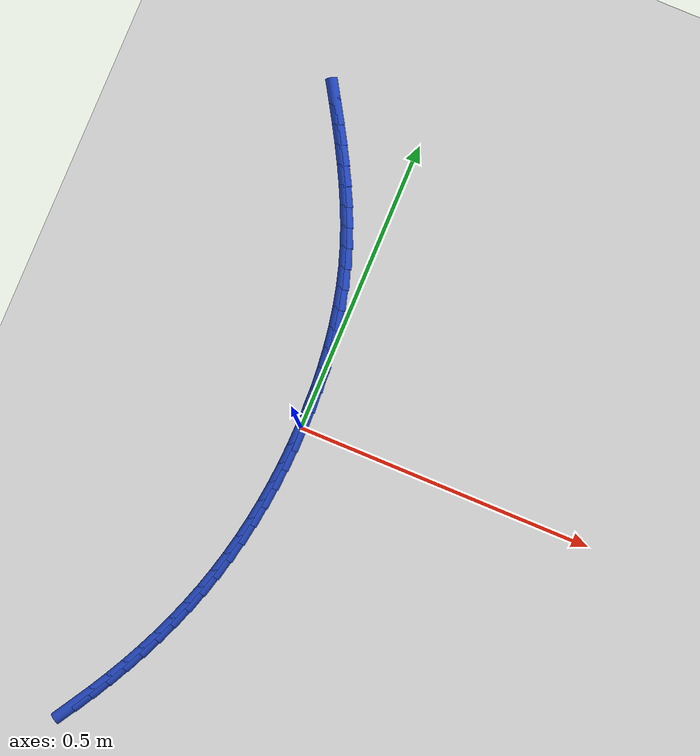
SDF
<sdf version="1.6">
 <world name="default">
  <model name="ground_plane">
   <static>1</static>
   <link name="link">
    <collision name="collision">
     <geometry><plane><normal>0 0 1</normal><size>100 100</size></plane></geometry>
     <surface><friction><ode><mu>100</mu><mu2>50</mu2></ode></friction></surface>
    </collision>
    <visual name="visual">
     <cast_shadows>0</cast_shadows>
     <geometry><plane><normal>0 0 1</normal><size>100 100</size></plane></geometry>
     <material>
      <script><uri>file://media/materials/scripts/gazebo.material</uri><name>Gazebo/WhiteGlow</name></script>
     </material>
    </visual>
   </link>
  </model>
  <model name="line">
   <link name="link_0">
    <pose>2.2985086056692694e-17 -1.3877787807814457e-17 0.01 0 1.57 -1.5632398384536728</pose>
    <collision name="collision">
     <geometry><cylinder><radius>0.01</radius><length>0.08</length></cylinder></geometry>
    </collision>
    <visual name="visual">
     <material>
      <script><name>Gazebo/Blue</name><uri>file://media/materials/scripts/gazebo.material</uri></script>
     </material>
     <geometry><cylinder><radius>0.01</radius><length>0.08</length></cylinder></geometry>
    </visual>
   </link>
   <link name="link_1">
    <pose>-0.00025837576314255824 0.034191920063962114 0.01 0 1.57 -1.5312324214005397</pose>
    <collision name="collision">
     <geometry><cylinder><radius>0.01</radius><length>0.08</length></cylinder></geometry>
    </collision>
    <visual name="visual">
     <material>
      <script><name>Gazebo/Blue</name><uri>file://media/materials/scripts/gazebo.material</uri></script>
     </material>
     <geometry><cylinder><radius>0.01</radius><length>0.08</length></cylinder></geometry>
    </visual>
   </link>
   <link name="link_2">
    <pose>-0.0016111040865151283 0.06836504899313049 0.01 0 1.57 -1.49722967650896</pose>
    <collision name="collision">
     <geometry><cylinder><radius>0.01</radius><length>0.08</length></cylinder></geometry>
    </collision>
    <visual name="visual">
     <material>
      <script><name>Gazebo/Blue</name><uri>file://media/materials/scripts/gazebo.material</uri></script>
     </material>
     <geometry><cylinder><radius>0.01</radius><length>0.08</length></cylinder></geometry>
    </visual>
   </link>
   <link name="link_3">
    <pose>-0.004122661577274795 0.10244332973766156 0.01 0 1.57 -1.4610895907378112</pose>
    <collision name="collision">
     <geometry><cylinder><radius>0.01</radius><length>0.08</length></cylinder></geometry>
    </collision>
    <visual name="visual">
     <material>
      <script><name>Gazebo/Blue</name><uri>file://media/materials/scripts/gazebo.material</uri></script>
     </material>
     <geometry><cylinder><radius>0.01</radius><length>0.08</length></cylinder></geometry>
    </visual>
   </link>
   <link name="link_4">
    <pose>-0.007857524842578654 0.13635070524771162 0.01 0 1.57 -1.4226739876428596</pose>
    <collision name="collision">
     <geometry><cylinder><radius>0.01</radius><length>0.08</length></cylinder></geometry>
    </collision>
    <visual name="visual">
     <material>
      <script><name>Gazebo/Blue</name><uri>file://media/materials/scripts/gazebo.material</uri></script>
     </material>
     <geometry><cylinder><radius>0.01</radius><length>0.08</length></cylinder></geometry>
    </visual>
   </link>
   <link name="link_5">
    <pose>-0.012880170489583807 0.17001111847343706 0.01 0 1.57 -1.3818534424990059</pose>
    <collision name="collision">
     <geometry><cylinder><radius>0.01</radius><length>0.08</length></cylinder></geometry>
    </collision>
    <visual name="visual">
     <material>
      <script><name>Gazebo/Blue</name><uri>file://media/materials/scripts/gazebo.material</uri></script>
     </material>
     <geometry><cylinder><radius>0.01</radius><length>0.08</length></cylinder></geometry>
    </visual>
   </link>
   <link name="link_6">
    <pose>-0.019255075125447357 0.20334851236499416 0.01 0 1.57 -1.3385136579555996</pose>
    <collision name="collision">
     <geometry><cylinder><radius>0.01</radius><length>0.08</length></cylinder></geometry>
    </collision>
    <visual name="visual">
     <material>
      <script><name>Gazebo/Blue</name><uri>file://media/materials/scripts/gazebo.material</uri></script>
     </material>
     <geometry><cylinder><radius>0.01</radius><length>0.08</length></cylinder></geometry>
    </visual>
   </link>
   <link name="link_7">
    <pose>-0.027046715357326397 0.23628682987253935 0.01 0 1.57 -1.292563396443888</pose>
    <collision name="collision">
     <geometry><cylinder><radius>0.01</radius><length>0.08</length></cylinder></geometry>
    </collision>
    <visual name="visual">
     <material>
      <script><name>Gazebo/Blue</name><uri>file://media/materials/scripts/gazebo.material</uri></script>
     </material>
     <geometry><cylinder><radius>0.01</radius><length>0.08</length></cylinder></geometry>
    </visual>
   </link>
   <link name="link_8">
    <pose>-0.036319567792378035 0.2687500139462289 0.01 0 1.57 -1.2442207988208127</pose>
    <collision name="collision">
     <geometry><cylinder><radius>0.01</radius><length>0.08</length></cylinder></geometry>
    </collision>
    <visual name="visual">
     <material>
      <script><name>Gazebo/Blue</name><uri>file://media/materials/scripts/gazebo.material</uri></script>
     </material>
     <geometry><cylinder><radius>0.01</radius><length>0.08</length></cylinder></geometry>
    </visual>
   </link>
   <link name="link_9">
    <pose>-0.04712986783984875 0.3006667583414745 0.01 0 1.57 -1.1977359957470655</pose>
    <collision name="collision">
     <geometry><cylinder><radius>0.01</radius><length>0.08</length></cylinder></geometry>
    </collision>
    <visual name="visual">
     <material>
      <script><name>Gazebo/Blue</name><uri>file://media/materials/scripts/gazebo.material</uri></script>
     </material>
     <geometry><cylinder><radius>0.01</radius><length>0.08</length></cylinder></geometry>
    </visual>
   </link>
   <link name="link_10">
    <pose>-0.059408259138107516 0.33203815673073617 0.01 0 1.57 -1.1565471879791045</pose>
    <collision name="collision">
     <geometry><cylinder><radius>0.01</radius><length>0.08</length></cylinder></geometry>
    </collision>
    <visual name="visual">
     <material>
      <script><name>Gazebo/Blue</name><uri>file://media/materials/scripts/gazebo.material</uri></script>
     </material>
     <geometry><cylinder><radius>0.01</radius><length>0.08</length></cylinder></geometry>
    </visual>
   </link>
   <link name="link_11">
    <pose>-0.07298752550513402 0.36292171605964507 0.01 0 1.57 -1.1208220712793802</pose>
    <collision name="collision">
     <geometry><cylinder><radius>0.01</radius><length>0.08</length></cylinder></geometry>
    </collision>
    <visual name="visual">
     <material>
      <script><name>Gazebo/Blue</name><uri>file://media/materials/scripts/gazebo.material</uri></script>
     </material>
     <geometry><cylinder><radius>0.01</radius><length>0.08</length></cylinder></geometry>
    </visual>
   </link>
   <link name="link_12">
    <pose>-0.08769786440917376 0.3933764342274584 0.01 0 1.57 -1.0905584630254996</pose>
    <collision name="collision">
     <geometry><cylinder><radius>0.01</radius><length>0.08</length></cylinder></geometry>
    </collision>
    <visual name="visual">
     <material>
      <script><name>Gazebo/Blue</name><uri>file://media/materials/scripts/gazebo.material</uri></script>
     </material>
     <geometry><cylinder><radius>0.01</radius><length>0.08</length></cylinder></geometry>
    </visual>
   </link>
   <link name="link_13">
    <pose>-0.1033694733184723 0.4234613091334334 0.01 0 1.57 -1.065703235288038</pose>
    <collision name="collision">
     <geometry><cylinder><radius>0.01</radius><length>0.08</length></cylinder></geometry>
    </collision>
    <visual name="visual">
     <material>
      <script><name>Gazebo/Blue</name><uri>file://media/materials/scripts/gazebo.material</uri></script>
     </material>
     <geometry><cylinder><radius>0.01</radius><length>0.08</length></cylinder></geometry>
    </visual>
   </link>
   <link name="link_14">
    <pose>-0.11983254970127509 0.4532353386768273 0.01 0 1.57 -1.046179385439959</pose>
    <collision name="collision">
     <geometry><cylinder><radius>0.01</radius><length>0.08</length></cylinder></geometry>
    </collision>
    <visual name="visual">
     <material>
      <script><name>Gazebo/Blue</name><uri>file://media/materials/scripts/gazebo.material</uri></script>
     </material>
     <geometry><cylinder><radius>0.01</radius><length>0.08</length></cylinder></geometry>
    </visual>
   </link>
   <link name="link_15">
    <pose>-0.13691729102582775 0.48275752075689776 0.01 0 1.57 -1.0319074098540488</pose>
    <collision name="collision">
     <geometry><cylinder><radius>0.01</radius><length>0.08</length></cylinder></geometry>
    </collision>
    <visual name="visual">
     <material>
      <script><name>Gazebo/Blue</name><uri>file://media/materials/scripts/gazebo.material</uri></script>
     </material>
     <geometry><cylinder><radius>0.01</radius><length>0.08</length></cylinder></geometry>
    </visual>
   </link>
   <link name="link_16">
    <pose>-0.15445389476037574 0.5120868532729017 0.01 0 1.57 -1.0228211870344515</pose>
    <collision name="collision">
     <geometry><cylinder><radius>0.01</radius><length>0.08</length></cylinder></geometry>
    </collision>
    <visual name="visual">
     <material>
      <script><name>Gazebo/Blue</name><uri>file://media/materials/scripts/gazebo.material</uri></script>
     </material>
     <geometry><cylinder><radius>0.01</radius><length>0.08</length></cylinder></geometry>
    </visual>
   </link>
   <link name="link_203">
    <pose>-0.16219746863497625 -0.5461639431210543 0.01 0 1.57 1.0235238391990396</pose>
    <collision name="collision">
     <geometry><cylinder><radius>0.01</radius><length>0.08</length></cylinder></geometry>
    </collision>
    <visual name="visual">
     <material>
      <script><name>Gazebo/Blue</name><uri>file://media/materials/scripts/gazebo.material</uri></script>
     </material>
     <geometry><cylinder><radius>0.01</radius><length>0.08</length></cylinder></geometry>
    </visual>
   </link>
   <link name="link_204">
    <pose>-0.14444143593478173 -0.5170250582835744 0.01 0 1.57 1.0517917301949506</pose>
    <collision name="collision">
     <geometry><cylinder><radius>0.01</radius><length>0.08</length></cylinder></geometry>
    </collision>
    <visual name="visual">
     <material>
      <script><name>Gazebo/Blue</name><uri>file://media/materials/scripts/gazebo.material</uri></script>
     </material>
     <geometry><cylinder><radius>0.01</radius><length>0.08</length></cylinder></geometry>
    </visual>
   </link>
   <link name="link_205">
    <pose>-0.12753412712905415 -0.48742754519273906 0.01 0 1.57 1.081067799493389</pose>
    <collision name="collision">
     <geometry><cylinder><radius>0.01</radius><length>0.08</length></cylinder></geometry>
    </collision>
    <visual name="visual">
     <material>
      <script><name>Gazebo/Blue</name><uri>file://media/materials/scripts/gazebo.material</uri></script>
     </material>
     <geometry><cylinder><radius>0.01</radius><length>0.08</length></cylinder></geometry>
    </visual>
   </link>
   <link name="link_206">
    <pose>-0.11152045581244874 -0.4573853595239652 0.01 0 1.57 1.1113946392658705</pose>
    <collision name="collision">
     <geometry><cylinder><radius>0.01</radius><length>0.08</length></cylinder></geometry>
    </collision>
    <visual name="visual">
     <material>
      <script><name>Gazebo/Blue</name><uri>file://media/materials/scripts/gazebo.material</uri></script>
     </material>
     <geometry><cylinder><radius>0.01</radius><length>0.08</length></cylinder></geometry>
    </visual>
   </link>
   <link name="link_207">
    <pose>-0.09644537450491711 -0.4269124159065779 0.01 0 1.57 1.1428086926308791</pose>
    <collision name="collision">
     <geometry><cylinder><radius>0.01</radius><length>0.08</length></cylinder></geometry>
    </collision>
    <visual name="visual">
     <material>
      <script><name>Gazebo/Blue</name><uri>file://media/materials/scripts/gazebo.material</uri></script>
     </material>
     <geometry><cylinder><radius>0.01</radius><length>0.08</length></cylinder></geometry>
    </visual>
   </link>
   <link name="link_208">
    <pose>-0.08235383572641207 -0.3960226289699048 0.01 0 1.57 1.1753406696636675</pose>
    <collision name="collision">
     <geometry><cylinder><radius>0.01</radius><length>0.08</length></cylinder></geometry>
    </collision>
    <visual name="visual">
     <material>
      <script><name>Gazebo/Blue</name><uri>file://media/materials/scripts/gazebo.material</uri></script>
     </material>
     <geometry><cylinder><radius>0.01</radius><length>0.08</length></cylinder></geometry>
    </visual>
   </link>
   <link name="link_209">
    <pose>-0.06929079199688526 -0.364729913343271 0.01 0 1.57 1.209014220962567</pose>
    <collision name="collision">
     <geometry><cylinder><radius>0.01</radius><length>0.08</length></cylinder></geometry>
    </collision>
    <visual name="visual">
     <material>
      <script><name>Gazebo/Blue</name><uri>file://media/materials/scripts/gazebo.material</uri></script>
     </material>
     <geometry><cylinder><radius>0.01</radius><length>0.08</length></cylinder></geometry>
    </visual>
   </link>
   <link name="link_210">
    <pose>-0.05730119583628872 -0.3330481836560027 0.01 0 1.57 1.2438444895148204</pose>
    <collision name="collision">
     <geometry><cylinder><radius>0.01</radius><length>0.08</length></cylinder></geometry>
    </collision>
    <visual name="visual">
     <material>
      <script><name>Gazebo/Blue</name><uri>file://media/materials/scripts/gazebo.material</uri></script>
     </material>
     <geometry><cylinder><radius>0.01</radius><length>0.08</length></cylinder></geometry>
    </visual>
   </link>
   <link name="link_211">
    <pose>-0.046429999764574494 -0.3009913545374259 0.01 0 1.57 1.2798145789662878</pose>
    <collision name="collision">
     <geometry><cylinder><radius>0.01</radius><length>0.08</length></cylinder></geometry>
    </collision>
    <visual name="visual">
     <material>
      <script><name>Gazebo/Blue</name><uri>file://media/materials/scripts/gazebo.material</uri></script>
     </material>
     <geometry><cylinder><radius>0.01</radius><length>0.08</length></cylinder></geometry>
    </visual>
   </link>
   <link name="link_212">
    <pose>-0.03672144956401663 -0.26857357532581316 0.01 0 1.57 1.3160875033845412</pose>
    <collision name="collision">
     <geometry><cylinder><radius>0.01</radius><length>0.08</length></cylinder></geometry>
    </collision>
    <visual name="visual">
     <material>
      <script><name>Gazebo/Blue</name><uri>file://media/materials/scripts/gazebo.material</uri></script>
     </material>
     <geometry><cylinder><radius>0.01</radius><length>0.08</length></cylinder></geometry>
    </visual>
   </link>
   <link name="link_213">
    <pose>-0.028193050154548552 -0.23581787605144727 0.01 0 1.57 1.3515920031172806</pose>
    <collision name="collision">
     <geometry><cylinder><radius>0.01</radius><length>0.08</length></cylinder></geometry>
    </collision>
    <visual name="visual">
     <material>
      <script><name>Gazebo/Blue</name><uri>file://media/materials/scripts/gazebo.material</uri></script>
     </material>
     <geometry><cylinder><radius>0.01</radius><length>0.08</length></cylinder></geometry>
    </visual>
   </link>
   <link name="link_214">
    <pose>-0.020827987649437732 -0.2027586840865572 0.01 0 1.57 1.3862634933650817</pose>
    <collision name="collision">
     <geometry><cylinder><radius>0.01</radius><length>0.08</length></cylinder></geometry>
    </collision>
    <visual name="visual">
     <material>
      <script><name>Gazebo/Blue</name><uri>file://media/materials/scripts/gazebo.material</uri></script>
     </material>
     <geometry><cylinder><radius>0.01</radius><length>0.08</length></cylinder></geometry>
    </visual>
   </link>
   <link name="link_215">
    <pose>-0.014607196198500665 -0.16943117468478203 0.01 0 1.57 1.4201150183058162</pose>
    <collision name="collision">
     <geometry><cylinder><radius>0.01</radius><length>0.08</length></cylinder></geometry>
    </collision>
    <visual name="visual">
     <material>
      <script><name>Gazebo/Blue</name><uri>file://media/materials/scripts/gazebo.material</uri></script>
     </material>
     <geometry><cylinder><radius>0.01</radius><length>0.08</length></cylinder></geometry>
    </visual>
   </link>
   <link name="link_216">
    <pose>-0.009511609951553776 -0.13587052309976017 0.01 0 1.57 1.4531662332894295</pose>
    <collision name="collision">
     <geometry><cylinder><radius>0.01</radius><length>0.08</length></cylinder></geometry>
    </collision>
    <visual name="visual">
     <material>
      <script><name>Gazebo/Blue</name><uri>file://media/materials/scripts/gazebo.material</uri></script>
     </material>
     <geometry><cylinder><radius>0.01</radius><length>0.08</length></cylinder></geometry>
    </visual>
   </link>
   <link name="link_217">
    <pose>-0.005522163058413825 -0.10211190458513243 0.01 0 1.57 1.4854425118208308</pose>
    <collision name="collision">
     <geometry><cylinder><radius>0.01</radius><length>0.08</length></cylinder></geometry>
    </collision>
    <visual name="visual">
     <material>
      <script><name>Gazebo/Blue</name><uri>file://media/materials/scripts/gazebo.material</uri></script>
     </material>
     <geometry><cylinder><radius>0.01</radius><length>0.08</length></cylinder></geometry>
    </visual>
   </link>
   <link name="link_218">
    <pose>-0.0026197896688971954 -0.06819049439453718 0.01 0 1.57 1.5169741094322087</pose>
    <collision name="collision">
     <geometry><cylinder><radius>0.01</radius><length>0.08</length></cylinder></geometry>
    </collision>
    <visual name="visual">
     <material>
      <script><name>Gazebo/Blue</name><uri>file://media/materials/scripts/gazebo.material</uri></script>
     </material>
     <geometry><cylinder><radius>0.01</radius><length>0.08</length></cylinder></geometry>
    </visual>
   </link>
   <link name="link_219">
    <pose>-0.0007854239328204059 -0.03414146778161362 0.01 0 1.57 1.547795399436721</pose>
    <collision name="collision">
     <geometry><cylinder><radius>0.01</radius><length>0.08</length></cylinder></geometry>
    </collision>
    <visual name="visual">
     <material>
      <script><name>Gazebo/Blue</name><uri>file://media/materials/scripts/gazebo.material</uri></script>
     </material>
     <geometry><cylinder><radius>0.01</radius><length>0.08</length></cylinder></geometry>
    </visual>
   </link>
   <link name="link_220">
    <pose>2.7755575615628914e-17 -7.632783294297951e-17 0.01 0 1.57 -1.5636484639754635</pose>
    <collision name="collision">
     <geometry><cylinder><radius>0.01</radius><length>0.08</length></cylinder></geometry>
    </collision>
    <visual name="visual">
     <material>
      <script><name>Gazebo/Blue</name><uri>file://media/materials/scripts/gazebo.material</uri></script>
     </material>
     <geometry><cylinder><radius>0.01</radius><length>0.08</length></cylinder></geometry>
    </visual>
   </link>
   <link name="link_221">
    <pose>-0.00024445202025243085 0.03419873369666173 0.01 0 1.57 -1.5341315295486146</pose>
    <collision name="collision">
     <geometry><cylinder><radius>0.01</radius><length>0.08</length></cylinder></geometry>
    </collision>
    <visual name="visual">
     <material>
      <script><name>Gazebo/Blue</name><uri>file://media/materials/scripts/gazebo.material</uri></script>
     </material>
     <geometry><cylinder><radius>0.01</radius><length>0.08</length></cylinder></geometry>
    </visual>
   </link>
   <link name="link_222">
    <pose>-0.0014997141433943251 0.06841955805473598 0.01 0 1.57 -1.5488804584166054</pose>
    <collision name="collision">
     <geometry><cylinder><radius>0.01</radius><length>0.08</length></cylinder></geometry>
    </collision>
    <visual name="visual">
     <material>
      <script><name>Gazebo/Blue</name><uri>file://media/materials/scripts/gazebo.material</uri></script>
     </material>
     <geometry><cylinder><radius>0.01</radius><length>0.08</length></cylinder></geometry>
    </visual>
   </link>
  </model>
 </world>
</sdf>
